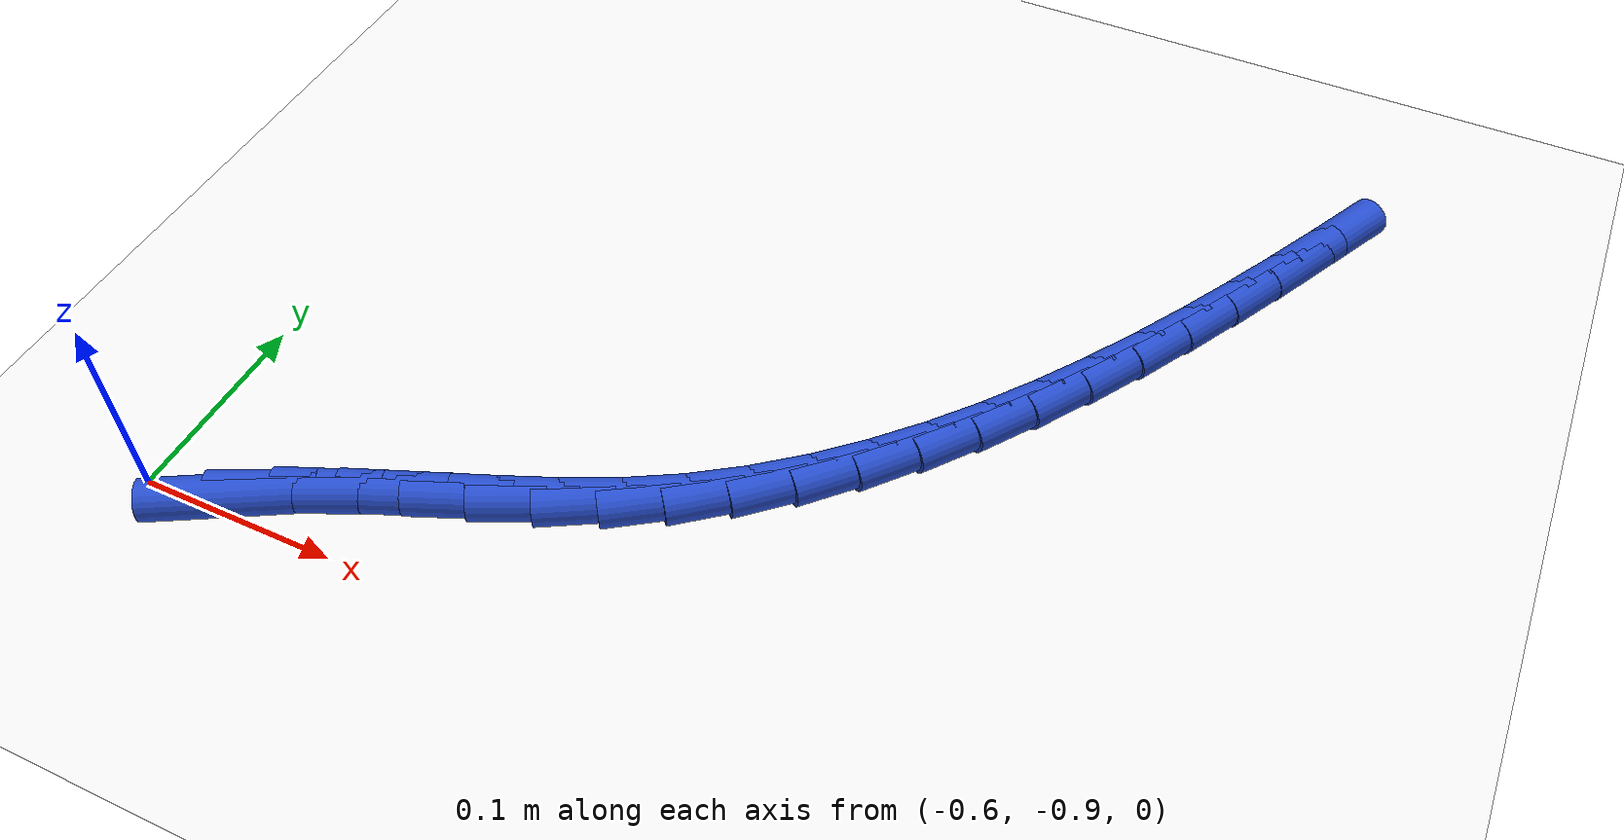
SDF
<sdf version="1.6">
 <world name="default">
  <model name="ground_plane">
   <static>1</static>
   <link name="link">
    <collision name="collision">
     <geometry><plane><normal>0 0 1</normal><size>100 100</size></plane></geometry>
     <surface><friction><ode><mu>100</mu><mu2>50</mu2></ode></friction></surface>
    </collision>
    <visual name="visual">
     <cast_shadows>0</cast_shadows>
     <geometry><plane><normal>0 0 1</normal><size>100 100</size></plane></geometry>
     <material>
      <script><uri>file://media/materials/scripts/gazebo.material</uri><name>Gazebo/WhiteGlow</name></script>
     </material>
    </visual>
   </link>
  </model>
  <model name="line">
   <link name="link_202">
    <pose>-0.5540325788849073 -0.8952279562716776 0.01 0 1.57 0.5102102333529576</pose>
    <collision name="collision">
     <geometry><cylinder><radius>0.01</radius><length>0.08</length></cylinder></geometry>
    </collision>
    <visual name="visual">
     <material>
      <script><name>Gazebo/Blue</name><uri>file://media/materials/scripts/gazebo.material</uri></script>
     </material>
     <geometry><cylinder><radius>0.01</radius><length>0.08</length></cylinder></geometry>
    </visual>
   </link>
   <link name="link_203">
    <pose>-0.5282637045706925 -0.8808067984862812 0.01 0 1.57 0.43702694161737105</pose>
    <collision name="collision">
     <geometry><cylinder><radius>0.01</radius><length>0.08</length></cylinder></geometry>
    </collision>
    <visual name="visual">
     <material>
      <script><name>Gazebo/Blue</name><uri>file://media/materials/scripts/gazebo.material</uri></script>
     </material>
     <geometry><cylinder><radius>0.01</radius><length>0.08</length></cylinder></geometry>
    </visual>
   </link>
   <link name="link_204">
    <pose>-0.5015455281473016 -0.8683253061062556 0.01 0 1.57 0.39352001672663234</pose>
    <collision name="collision">
     <geometry><cylinder><radius>0.01</radius><length>0.08</length></cylinder></geometry>
    </collision>
    <visual name="visual">
     <material>
      <script><name>Gazebo/Blue</name><uri>file://media/materials/scripts/gazebo.material</uri></script>
     </material>
     <geometry><cylinder><radius>0.01</radius><length>0.08</length></cylinder></geometry>
    </visual>
   </link>
   <link name="link_205">
    <pose>-0.47431614355646545 -0.857020327980027 0.01 0 1.57 0.37957822525167784</pose>
    <collision name="collision">
     <geometry><cylinder><radius>0.01</radius><length>0.08</length></cylinder></geometry>
    </collision>
    <visual name="visual">
     <material>
      <script><name>Gazebo/Blue</name><uri>file://media/materials/scripts/gazebo.material</uri></script>
     </material>
     <geometry><cylinder><radius>0.01</radius><length>0.08</length></cylinder></geometry>
    </visual>
   </link>
   <link name="link_206">
    <pose>-0.44701364473991434 -0.8461287129560227 0.01 0 1.57 0.39534254244725603</pose>
    <collision name="collision">
     <geometry><cylinder><radius>0.01</radius><length>0.08</length></cylinder></geometry>
    </collision>
    <visual name="visual">
     <material>
      <script><name>Gazebo/Blue</name><uri>file://media/materials/scripts/gazebo.material</uri></script>
     </material>
     <geometry><cylinder><radius>0.01</radius><length>0.08</length></cylinder></geometry>
    </visual>
   </link>
   <link name="link_207">
    <pose>-0.420076125639379 -0.834887309882669 0.01 0 1.57 0.44158852038820867</pose>
    <collision name="collision">
     <geometry><cylinder><radius>0.01</radius><length>0.08</length></cylinder></geometry>
    </collision>
    <visual name="visual">
     <material>
      <script><name>Gazebo/Blue</name><uri>file://media/materials/scripts/gazebo.material</uri></script>
     </material>
     <geometry><cylinder><radius>0.01</radius><length>0.08</length></cylinder></geometry>
    </visual>
   </link>
   <link name="link_208">
    <pose>-0.3939416801965895 -0.8225329676083926 0.01 0 1.57 0.5168810012923492</pose>
    <collision name="collision">
     <geometry><cylinder><radius>0.01</radius><length>0.08</length></cylinder></geometry>
    </collision>
    <visual name="visual">
     <material>
      <script><name>Gazebo/Blue</name><uri>file://media/materials/scripts/gazebo.material</uri></script>
     </material>
     <geometry><cylinder><radius>0.01</radius><length>0.08</length></cylinder></geometry>
    </visual>
   </link>
   <link name="link_209">
    <pose>-0.36901450417373155 -0.8083636700551197 0.01 0 1.57 0.5989232175185575</pose>
    <collision name="collision">
     <geometry><cylinder><radius>0.01</radius><length>0.08</length></cylinder></geometry>
    </collision>
    <visual name="visual">
     <material>
      <script><name>Gazebo/Blue</name><uri>file://media/materials/scripts/gazebo.material</uri></script>
     </material>
     <geometry><cylinder><radius>0.01</radius><length>0.08</length></cylinder></geometry>
    </visual>
   </link>
   <link name="link_210">
    <pose>-0.34538827549937196 -0.7922374173708641 0.01 0 1.57 0.674902824005677</pose>
    <collision name="collision">
     <geometry><cylinder><radius>0.01</radius><length>0.08</length></cylinder></geometry>
    </collision>
    <visual name="visual">
     <material>
      <script><name>Gazebo/Blue</name><uri>file://media/materials/scripts/gazebo.material</uri></script>
     </material>
     <geometry><cylinder><radius>0.01</radius><length>0.08</length></cylinder></geometry>
    </visual>
   </link>
   <link name="link_211">
    <pose>-0.3229899814221368 -0.7743128349025792 0.01 0 1.57 0.7441644002867783</pose>
    <collision name="collision">
     <geometry><cylinder><radius>0.01</radius><length>0.08</length></cylinder></geometry>
    </collision>
    <visual name="visual">
     <material>
      <script><name>Gazebo/Blue</name><uri>file://media/materials/scripts/gazebo.material</uri></script>
     </material>
     <geometry><cylinder><radius>0.01</radius><length>0.08</length></cylinder></geometry>
    </visual>
   </link>
   <link name="link_212">
    <pose>-0.30174501494540945 -0.7547514232047173 0.01 0 1.57 0.8065219968695096</pose>
    <collision name="collision">
     <geometry><cylinder><radius>0.01</radius><length>0.08</length></cylinder></geometry>
    </collision>
    <visual name="visual">
     <material>
      <script><name>Gazebo/Blue</name><uri>file://media/materials/scripts/gazebo.material</uri></script>
     </material>
     <geometry><cylinder><radius>0.01</radius><length>0.08</length></cylinder></geometry>
    </visual>
   </link>
   <link name="link_213">
    <pose>-0.2815787690725742 -0.7337146828317318 0.01 0 1.57 0.8620539463832679</pose>
    <collision name="collision">
     <geometry><cylinder><radius>0.01</radius><length>0.08</length></cylinder></geometry>
    </collision>
    <visual name="visual">
     <material>
      <script><name>Gazebo/Blue</name><uri>file://media/materials/scripts/gazebo.material</uri></script>
     </material>
     <geometry><cylinder><radius>0.01</radius><length>0.08</length></cylinder></geometry>
    </visual>
   </link>
   <link name="link_214">
    <pose>-0.26241663680701444 -0.7113641143380756 0.01 0 1.57 0.911011113743887</pose>
    <collision name="collision">
     <geometry><cylinder><radius>0.01</radius><length>0.08</length></cylinder></geometry>
    </collision>
    <visual name="visual">
     <material>
      <script><name>Gazebo/Blue</name><uri>file://media/materials/scripts/gazebo.material</uri></script>
     </material>
     <geometry><cylinder><radius>0.01</radius><length>0.08</length></cylinder></geometry>
    </visual>
   </link>
   <link name="link_215">
    <pose>-0.24418401115211347 -0.6878612182782003 0.01 0 1.57 0.9537384305719455</pose>
    <collision name="collision">
     <geometry><cylinder><radius>0.01</radius><length>0.08</length></cylinder></geometry>
    </collision>
    <visual name="visual">
     <material>
      <script><name>Gazebo/Blue</name><uri>file://media/materials/scripts/gazebo.material</uri></script>
     </material>
     <geometry><cylinder><radius>0.01</radius><length>0.08</length></cylinder></geometry>
    </visual>
   </link>
   <link name="link_216">
    <pose>-0.22680628511125625 -0.6633674952065605 0.01 0 1.57 0.990614811317044</pose>
    <collision name="collision">
     <geometry><cylinder><radius>0.01</radius><length>0.08</length></cylinder></geometry>
    </collision>
    <visual name="visual">
     <material>
      <script><name>Gazebo/Blue</name><uri>file://media/materials/scripts/gazebo.material</uri></script>
     </material>
     <geometry><cylinder><radius>0.01</radius><length>0.08</length></cylinder></geometry>
    </visual>
   </link>
   <link name="link_217">
    <pose>-0.21020885168782588 -0.6380444456776081 0.01 0 1.57 1.0220106652926748</pose>
    <collision name="collision">
     <geometry><cylinder><radius>0.01</radius><length>0.08</length></cylinder></geometry>
    </collision>
    <visual name="visual">
     <material>
      <script><name>Gazebo/Blue</name><uri>file://media/materials/scripts/gazebo.material</uri></script>
     </material>
     <geometry><cylinder><radius>0.01</radius><length>0.08</length></cylinder></geometry>
    </visual>
   </link>
   <link name="link_218">
    <pose>-0.19431710388520618 -0.6120535702457964 0.01 0 1.57 1.0482595445531002</pose>
    <collision name="collision">
     <geometry><cylinder><radius>0.01</radius><length>0.08</length></cylinder></geometry>
    </collision>
    <visual name="visual">
     <material>
      <script><name>Gazebo/Blue</name><uri>file://media/materials/scripts/gazebo.material</uri></script>
     </material>
     <geometry><cylinder><radius>0.01</radius><length>0.08</length></cylinder></geometry>
    </visual>
   </link>
   <link name="link_219">
    <pose>-0.17905643470678087 -0.5855563694655777 0.01 0 1.57 1.0696398488202274</pose>
    <collision name="collision">
     <geometry><cylinder><radius>0.01</radius><length>0.08</length></cylinder></geometry>
    </collision>
    <visual name="visual">
     <material>
      <script><name>Gazebo/Blue</name><uri>file://media/materials/scripts/gazebo.material</uri></script>
     </material>
     <geometry><cylinder><radius>0.01</radius><length>0.08</length></cylinder></geometry>
    </visual>
   </link>
   <link name="link_220">
    <pose>-0.16435223715593375 -0.5587143438914051 0.01 0 1.57 1.0863628882833145</pose>
    <collision name="collision">
     <geometry><cylinder><radius>0.01</radius><length>0.08</length></cylinder></geometry>
    </collision>
    <visual name="visual">
     <material>
      <script><name>Gazebo/Blue</name><uri>file://media/materials/scripts/gazebo.material</uri></script>
     </material>
     <geometry><cylinder><radius>0.01</radius><length>0.08</length></cylinder></geometry>
    </visual>
   </link>
   <link name="link_221">
    <pose>-0.15012990423604852 -0.5316889940777311 0.01 0 1.57 1.0985643014877786</pose>
    <collision name="collision">
     <geometry><cylinder><radius>0.01</radius><length>0.08</length></cylinder></geometry>
    </collision>
    <visual name="visual">
     <material>
      <script><name>Gazebo/Blue</name><uri>file://media/materials/scripts/gazebo.material</uri></script>
     </material>
     <geometry><cylinder><radius>0.01</radius><length>0.08</length></cylinder></geometry>
    </visual>
   </link>
  </model>
 </world>
</sdf>
